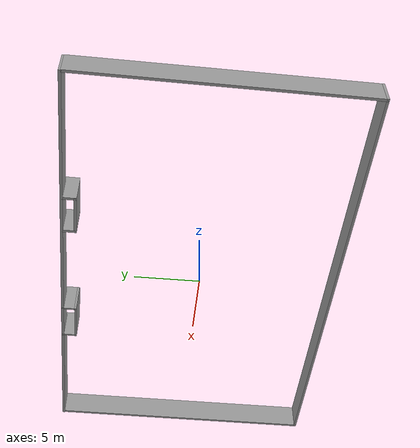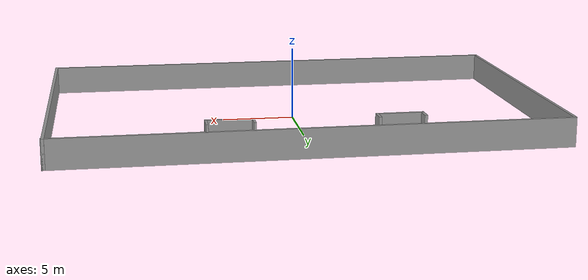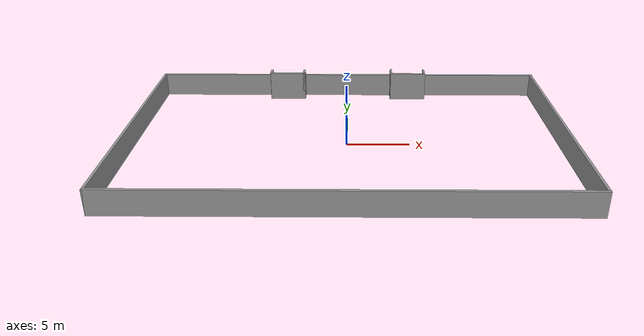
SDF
<?xml version='1.0'?>
<sdf version='1.7'>
  <model name='Greenhouse_layout'>
    <pose>0.020114 0 0 0 -0 0</pose>
    <link name='Wall_0'>
      <collision name='Wall_0_Collision'>
        <geometry>
          <box>
            <size>34.2 0.2 2</size>
          </box>
        </geometry>
        <pose>0 0 1 0 -0 0</pose>
      </collision>
      <visual name='Wall_0_Visual'>
        <pose>0 0 1 0 -0 0</pose>
        <geometry>
          <box>
            <size>34.2 0.2 2</size>
          </box>
        </geometry>
        <material>
          <script>
            <uri>file://media/materials/scripts/gazebo.material</uri>
            <name>Gazebo/Grey</name>
          </script>
          <ambient>1 1 1 1</ambient>
        </material>
        <meta>
          <layer>0</layer>
        </meta>
      </visual>
      <pose>-0.020114 -10.55 0 0 -0 0</pose>
    </link>
    <link name='Wall_14'>
      <collision name='Wall_14_Collision'>
        <geometry>
          <box>
            <size>1.05 0.2 2.5</size>
          </box>
        </geometry>
        <pose>0 0 1.25 0 -0 0</pose>
      </collision>
      <visual name='Wall_14_Visual'>
        <pose>0 0 1.25 0 -0 0</pose>
        <geometry>
          <box>
            <size>1.05 0.2 2.5</size>
          </box>
        </geometry>
        <material>
          <script>
            <uri>file://media/materials/scripts/gazebo.material</uri>
            <name>Gazebo/Grey</name>
          </script>
          <ambient>1 1 1 1</ambient>
        </material>
        <meta>
          <layer>0</layer>
        </meta>
      </visual>
      <pose>-7.00262 9.975 0 0 -0 1.5708</pose>
    </link>
    <link name='Wall_16'>
      <collision name='Wall_16_Collision'>
        <geometry>
          <box>
            <size>1.05 0.2 2.5</size>
          </box>
        </geometry>
        <pose>0 0 1.25 0 -0 0</pose>
      </collision>
      <visual name='Wall_16_Visual'>
        <pose>0 0 1.25 0 -0 0</pose>
        <geometry>
          <box>
            <size>1.05 0.2 2.5</size>
          </box>
        </geometry>
        <material>
          <script>
            <uri>file://media/materials/scripts/gazebo.material</uri>
            <name>Gazebo/Grey</name>
          </script>
          <ambient>1 1 1 1</ambient>
        </material>
        <meta>
          <layer>0</layer>
        </meta>
      </visual>
      <pose>-4.02011 9.975 0 0 -0 1.5708</pose>
    </link>
    <link name='Wall_18'>
      <collision name='Wall_18_Collision'>
        <geometry>
          <box>
            <size>3.15 0.15 2.5</size>
          </box>
        </geometry>
        <pose>0 0 1.25 0 -0 0</pose>
      </collision>
      <visual name='Wall_18_Visual'>
        <pose>0 0 1.25 0 -0 0</pose>
        <geometry>
          <box>
            <size>3.15 0.15 2.5</size>
          </box>
        </geometry>
        <material>
          <script>
            <uri>file://media/materials/scripts/gazebo.material</uri>
            <name>Gazebo/Grey</name>
          </script>
          <ambient>1 1 1 1</ambient>
        </material>
        <meta>
          <layer>0</layer>
        </meta>
      </visual>
      <pose>5.49738 9.5 0 0 -0 0</pose>
    </link>
    <link name='Wall_2'>
      <collision name='Wall_2_Collision'>
        <geometry>
          <box>
            <size>21.15 0.2 2</size>
          </box>
        </geometry>
        <pose>0 0 1 0 -0 0</pose>
      </collision>
      <visual name='Wall_2_Visual'>
        <pose>0 0 1 0 -0 0</pose>
        <geometry>
          <box>
            <size>21.15 0.2 2</size>
          </box>
        </geometry>
        <material>
          <script>
            <uri>file://media/materials/scripts/gazebo.material</uri>
            <name>Gazebo/Grey</name>
          </script>
          <ambient>1 1 1 1</ambient>
        </material>
        <meta>
          <layer>0</layer>
        </meta>
      </visual>
      <pose>-17.0201 -0.075 0 0 -0 1.5708</pose>
    </link>
    <link name='Wall_20'>
      <collision name='Wall_20_Collision'>
        <geometry>
          <box>
            <size>0.15 0.15 2.5</size>
          </box>
        </geometry>
        <pose>0 0 1.25 0 -0 0</pose>
      </collision>
      <visual name='Wall_20_Visual'>
        <pose>0 0 1.25 0 -0 0</pose>
        <geometry>
          <box>
            <size>0.15 0.15 2.5</size>
          </box>
        </geometry>
        <material>
          <script>
            <uri>file://media/materials/scripts/gazebo.material</uri>
            <name>Gazebo/Grey</name>
          </script>
          <ambient>1 1 1 1</ambient>
        </material>
        <meta>
          <layer>0</layer>
        </meta>
      </visual>
      <pose>3.97989 9.55 0 0 -0 0</pose>
    </link>
    <link name='Wall_4'>
      <collision name='Wall_4_Collision'>
        <geometry>
          <box>
            <size>34.2005 0.2 2</size>
          </box>
        </geometry>
        <pose>0 0 1 0 -0 0</pose>
      </collision>
      <visual name='Wall_4_Visual'>
        <pose>0 0 1 0 -0 0</pose>
        <geometry>
          <box>
            <size>34.2005 0.2 2</size>
          </box>
        </geometry>
        <material>
          <script>
            <uri>file://media/materials/scripts/gazebo.material</uri>
            <name>Gazebo/Grey</name>
          </script>
          <ambient>1 1 1 1</ambient>
        </material>
        <meta>
          <layer>0</layer>
        </meta>
      </visual>
      <pose>0.019886 10.55 0 0 -0 0</pose>
    </link>
    <link name='Wall_49'>
      <collision name='Wall_49_Collision'>
        <geometry>
          <box>
            <size>1.15 0.15 2.5</size>
          </box>
        </geometry>
        <pose>0 0 1.25 0 -0 0</pose>
      </collision>
      <visual name='Wall_49_Visual'>
        <pose>0 0 1.25 0 -0 0</pose>
        <geometry>
          <box>
            <size>1.15 0.15 2.5</size>
          </box>
        </geometry>
        <material>
          <script>
            <uri>file://media/materials/scripts/gazebo.material</uri>
            <name>Gazebo/Grey</name>
          </script>
          <ambient>1 1 1 1</ambient>
        </material>
        <meta>
          <layer>0</layer>
        </meta>
      </visual>
      <pose>6.97989 10.05 0 0 -0 1.5708</pose>
    </link>
    <link name='Wall_51'>
      <collision name='Wall_51_Collision'>
        <geometry>
          <box>
            <size>1.15 0.15 2.5</size>
          </box>
        </geometry>
        <pose>0 0 1.25 0 -0 0</pose>
      </collision>
      <visual name='Wall_51_Visual'>
        <pose>0 0 1.25 0 -0 0</pose>
        <geometry>
          <box>
            <size>1.15 0.15 2.5</size>
          </box>
        </geometry>
        <material>
          <script>
            <uri>file://media/materials/scripts/gazebo.material</uri>
            <name>Gazebo/Grey</name>
          </script>
          <ambient>1 1 1 1</ambient>
        </material>
        <meta>
          <layer>0</layer>
        </meta>
      </visual>
      <pose>3.97989 10.05 0 0 -0 1.5708</pose>
    </link>
    <link name='Wall_6'>
      <collision name='Wall_6_Collision'>
        <geometry>
          <box>
            <size>21.3 0.2 2</size>
          </box>
        </geometry>
        <pose>0 0 1 0 -0 0</pose>
      </collision>
      <visual name='Wall_6_Visual'>
        <pose>0 0 1 0 -0 0</pose>
        <geometry>
          <box>
            <size>21.3 0.2 2</size>
          </box>
        </geometry>
        <material>
          <script>
            <uri>file://media/materials/scripts/gazebo.material</uri>
            <name>Gazebo/Grey</name>
          </script>
          <ambient>1 1 1 1</ambient>
        </material>
        <meta>
          <layer>0</layer>
        </meta>
      </visual>
      <pose>16.9799 0 0 0 -0 1.5708</pose>
    </link>
    <link name='Wall_8'>
      <collision name='Wall_8_Collision'>
        <geometry>
          <box>
            <size>3.16502 0.2 2.5</size>
          </box>
        </geometry>
        <pose>0 0 1.25 0 -0 0</pose>
      </collision>
      <visual name='Wall_8_Visual'>
        <pose>0 0 1.25 0 -0 0</pose>
        <geometry>
          <box>
            <size>3.16502 0.2 2.5</size>
          </box>
        </geometry>
        <material>
          <script>
            <uri>file://media/materials/scripts/gazebo.material</uri>
            <name>Gazebo/Grey</name>
          </script>
          <ambient>1 1 1 1</ambient>
        </material>
        <meta>
          <layer>0</layer>
        </meta>
      </visual>
      <pose>-5.50262 9.55 0 0 -0 0</pose>
    </link>
    <static>1</static>
  </model>
</sdf>
